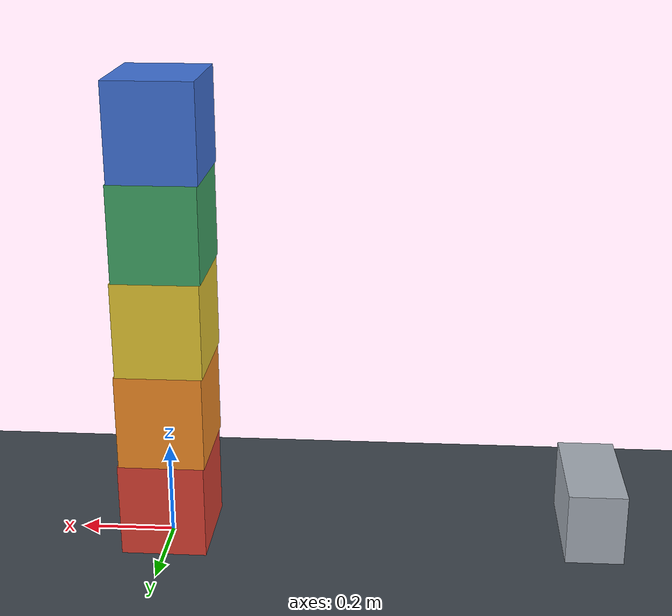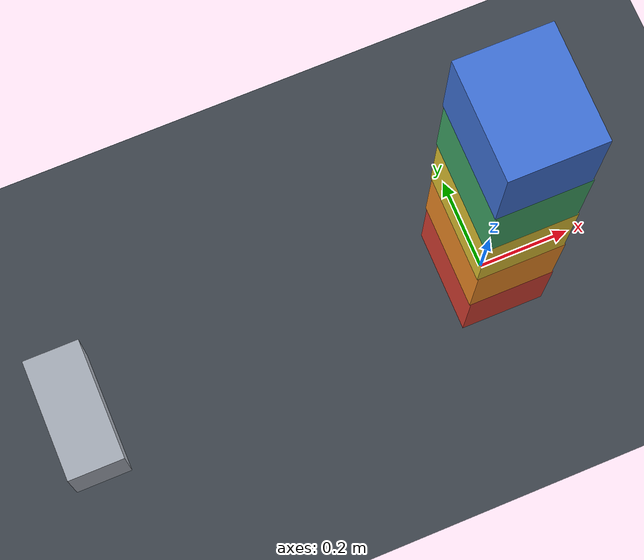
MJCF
<mujoco model="five_block_topple">
  <compiler angle="radian"/>
  <option timestep="0.002" gravity="0 0 -9.81" integrator="implicitfast" solver="Newton" iterations="80" cone="elliptic"/>
  <size njmax="1000" nconmax="200"/>

  <visual>
    <headlight ambient="0.35 0.35 0.35" diffuse="0.7 0.7 0.7" specular="0.2 0.2 0.2"/>
  </visual>

  <worldbody>
    <light name="overhead" pos="-2 -3 5" dir="0.3 0.4 -1"/>
    <camera name="overview" pos="2.6 -3.8 2.1" xyaxes="0.825 0.565 0 -0.205 0.300 0.932"/>

    <geom name="floor" type="plane" pos="0 0 0" size="5 5 0.1" rgba="0.24 0.27 0.30 1" friction="0.45 0.005 0.0001" priority="1" condim="3" solref="0.008 1" solimp="0.95 0.99 0.001"/>

    <body name="block1" pos="0 0 0.1">
      <freejoint name="block1_free"/>
      <geom name="block1_geom" type="box" size="0.09 0.11 0.1" mass="0.5" rgba="0.85 0.25 0.20 1" friction="0.9 0.005 0.0001" condim="3" solref="0.008 1" solimp="0.95 0.99 0.001"/>
    </body>

    <body name="block2" pos="-0.003 0 0.3">
      <freejoint name="block2_free"/>
      <geom name="block2_geom" type="box" size="0.09 0.11 0.1" mass="0.5" rgba="0.95 0.55 0.15 1" friction="0.9 0.005 0.0001" condim="3" solref="0.008 1" solimp="0.95 0.99 0.001"/>
    </body>

    <body name="block3" pos="-0.006 0 0.5">
      <freejoint name="block3_free"/>
      <geom name="block3_geom" type="box" size="0.09 0.11 0.1" mass="0.5" rgba="0.90 0.78 0.20 1" friction="0.9 0.005 0.0001" condim="3" solref="0.008 1" solimp="0.95 0.99 0.001"/>
    </body>

    <body name="block4" pos="-0.009 0 0.7">
      <freejoint name="block4_free"/>
      <geom name="block4_geom" type="box" size="0.09 0.11 0.1" mass="0.5" rgba="0.25 0.65 0.40 1" friction="0.9 0.005 0.0001" condim="3" solref="0.008 1" solimp="0.95 0.99 0.001"/>
    </body>

    <body name="block5" pos="-0.012 0 0.9">
      <freejoint name="block5_free"/>
      <geom name="block5_geom" type="box" size="0.09 0.11 0.1" mass="0.5" rgba="0.25 0.45 0.85 1" friction="0.9 0.005 0.0001" condim="3" solref="0.008 1" solimp="0.95 0.99 0.001"/>
    </body>

    <!-- The guided pusher reaches the stack after approximately 0.8 s. -->
    <body name="pusher" pos="-0.9 0 0.1">
      <joint name="push_slide" type="slide" axis="1 0 0" limited="true" range="0 1.6" damping="2" solreflimit="0.008 1"/>
      <geom name="pusher_geom" type="box" size="0.06 0.13 0.075" mass="3" rgba="0.65 0.68 0.72 1" friction="0.6 0.005 0.0001" condim="3" solref="0.008 1" solimp="0.95 0.99 0.001"/>
    </body>
  </worldbody>

  <actuator>
    <velocity name="push_drive" joint="push_slide" kv="100" ctrllimited="true" ctrlrange="0 1" forcelimited="true" forcerange="-50 50"/>
  </actuator>

  <keyframe>
    <key name="start" qpos="0 0 0.1 1 0 0 0 -0.003 0 0.3 1 0 0 0 -0.006 0 0.5 1 0 0 0 -0.009 0 0.7 1 0 0 0 -0.012 0 0.9 1 0 0 0 0" ctrl="1"/>
  </keyframe>
</mujoco>
